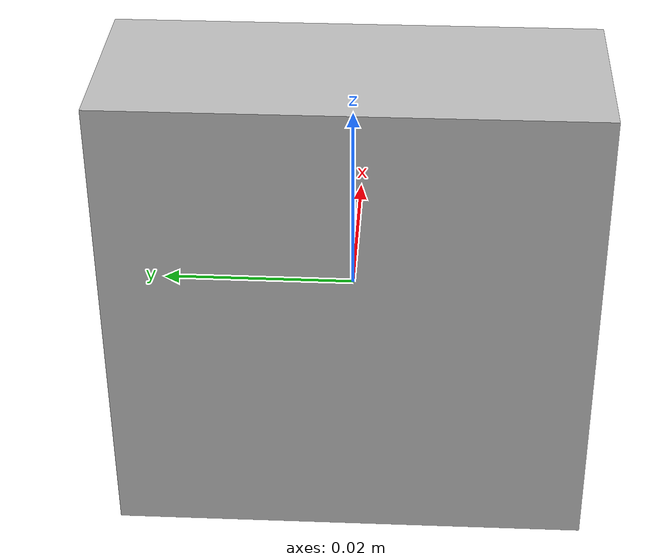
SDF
<?xml version="1.0" ?>
<sdf version="1.5">
  <model name="vl53l1x">
    <link name="link">

      <inertial>
        <pose>0 0 0 0 0 0</pose>
        <mass>0.19</mass>
        <inertia>
          <ixx>4.15e-6</ixx>
          <ixy>0</ixy>
          <ixz>0</ixz>
          <iyy>2.407e-6</iyy>
          <iyz>0</iyz>
          <izz>2.407e-6</izz>
        </inertia>
      </inertial>

      <visual name="visual">
        <geometry>
          <box>
            <size>0.02 0.05 0.05</size>
          </box>
        </geometry>
      </visual>

      <sensor name="laser_front" type="ray">
        <pose>0.2 0 0 0 0 0</pose>
          <ray>
            <scan>
              <horizontal>
                <samples>32</samples>
                <resolution>1</resolution>
                <min_angle>-.20943</min_angle>
                <max_angle>.20943</max_angle>
              </horizontal>
              <vertical>
                <samples>32</samples>
                <resolution>1</resolution>
                <min_angle>-.20943</min_angle>
                <max_angle>.20943</max_angle>
              </vertical>
            </scan>
            <range>
              <min>0.2</min>
              <max>4.</max>
              <resolution>0.05</resolution>
            </range>
            <noise>
              <type>gaussian</type>
              <mean>0.0</mean>
              <stddev>0.01</stddev>
            </noise>
          </ray>
          <plugin name="gazebo_ros_head_rplidar_controller" filename="libgazebo_ros_block_laser.so">
            <topicName>laser/front/scan</topicName>
            <frameName>base_link</frameName>
            <gaussianNoise>0.00</gaussianNoise>
            <alwaysOn>true</alwaysOn>
            <updateRate>100</updateRate>
          </plugin>
          <always_on>1</always_on>
          <update_rate>100</update_rate>
          <visualize>true</visualize>
      </sensor>

      <sensor name="laser_left" type="ray">
        <pose>0 0.1 0 0 0 0</pose>
          <ray>
            <scan>
              <horizontal>
                <samples>32</samples>
                <resolution>1</resolution>
                <min_angle>1.36136</min_angle>
                <max_angle>1.7802</max_angle>
              </horizontal>
              <vertical>
                <samples>32</samples>
                <resolution>1</resolution>
                <min_angle>-.20943</min_angle>
                <max_angle>.20943</max_angle>
              </vertical>
            </scan>
            <range>
              <min>0.2</min>
              <max>4.</max>
              <resolution>0.05</resolution>
            </range>
            <noise>
              <type>gaussian</type>
              <mean>0.0</mean>
              <stddev>0.01</stddev>
            </noise>
          </ray>
          <plugin name="gazebo_ros_head_rplidar_controller" filename="libgazebo_ros_block_laser.so">
            <topicName>laser/left/scan</topicName>
            <frameName>base_link</frameName>
            <gaussianNoise>0.00</gaussianNoise>
            <alwaysOn>true</alwaysOn>
            <updateRate>100</updateRate>
          </plugin>
          <always_on>1</always_on>
          <update_rate>100</update_rate>
          <visualize>true</visualize>
      </sensor>

      <sensor name="laser_right" type="ray">
        <pose>0 -0.1 0 0 0 0</pose>
          <ray>
            <scan>
              <horizontal>
                <samples>32</samples>
                <resolution>1</resolution>
                <min_angle>-1.7802</min_angle>
                <max_angle>-1.36136</max_angle>
              </horizontal>
              <vertical>
                <samples>32</samples>
                <resolution>1</resolution>
                <min_angle>-.20943</min_angle>
                <max_angle>.20943</max_angle>
              </vertical>
            </scan>
            <range>
              <min>0.2</min>
              <max>4.</max>
              <resolution>0.05</resolution>
            </range>
            <noise>
              <type>gaussian</type>
              <mean>0.0</mean>
              <stddev>0.01</stddev>
            </noise>
          </ray>
          <plugin name="gazebo_ros_head_rplidar_controller" filename="libgazebo_ros_block_laser.so">
            <topicName>laser/right/scan</topicName>
            <frameName>base_link</frameName>
            <gaussianNoise>0.00</gaussianNoise>
            <alwaysOn>true</alwaysOn>
            <updateRate>100</updateRate>
          </plugin>
          <always_on>1</always_on>
          <update_rate>100</update_rate>
          <visualize>true</visualize>
      </sensor>

      <sensor name="laser_rear" type="ray">
        <pose>-0.1 0 0 0 0 0</pose>
          <ray>
            <scan>
              <horizontal>
                <samples>32</samples>
                <resolution>1</resolution>
                <min_angle>2.93216</min_angle>
                <max_angle>3.35102</max_angle>
              </horizontal>
              <vertical>
                <samples>32</samples>
                <resolution>1</resolution>
                <min_angle>-.20943</min_angle>
                <max_angle>.20943</max_angle>
              </vertical>
            </scan>
            <range>
              <min>0.2</min>
              <max>4.</max>
              <resolution>0.05</resolution>
            </range>
            <noise>
              <type>gaussian</type>
              <mean>0.0</mean>
              <stddev>0.01</stddev>
            </noise>
          </ray>
          <plugin name="gazebo_ros_head_rplidar_controller" filename="libgazebo_ros_block_laser.so">
            <topicName>laser/rear/scan</topicName>
            <frameName>base_link</frameName>
            <gaussianNoise>0.00</gaussianNoise>
            <alwaysOn>true</alwaysOn>
            <updateRate>100</updateRate>
          </plugin>
          <always_on>1</always_on>
          <update_rate>100</update_rate>
          <visualize>true</visualize>
      </sensor>

      <sensor name="laser_down" type="ray">
        <pose>0 0 -0.02 0 0 0</pose>
          <ray>
            <scan>
              <horizontal>
                <samples>32</samples>
                <resolution>1</resolution>
                <min_angle>0</min_angle>
                <max_angle>6.28</max_angle>
              </horizontal>
              <vertical>
                <samples>32</samples>
                <resolution>1</resolution>
                <min_angle>-1.57</min_angle>
                <max_angle>-1.36136</max_angle>
              </vertical>
            </scan>
            <range>
              <min>0.2</min>
              <max>4.</max>
              <resolution>0.05</resolution>
            </range>
            <noise>
              <type>gaussian</type>
              <mean>0.0</mean>
              <stddev>0.01</stddev>
            </noise>
          </ray>
          <plugin name="gazebo_ros_head_rplidar_controller" filename="libgazebo_ros_block_laser.so">
            <topicName>laser/down/scan</topicName>
            <frameName>base_link</frameName>
            <gaussianNoise>0.00</gaussianNoise>
            <alwaysOn>true</alwaysOn>
            <updateRate>100</updateRate>
          </plugin>
          <always_on>1</always_on>
          <update_rate>100</update_rate>
          <visualize>true</visualize>
      </sensor>

    </link>
  </model>
</sdf>

<!-- vim: set et fenc= ff=unix sts=0 sw=2 ts=2 : -->
